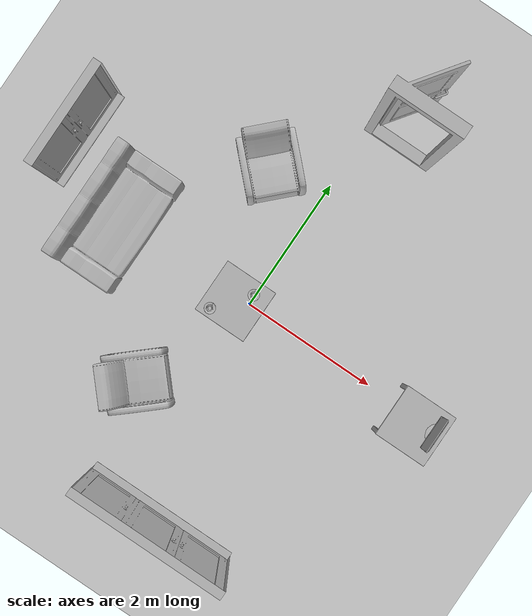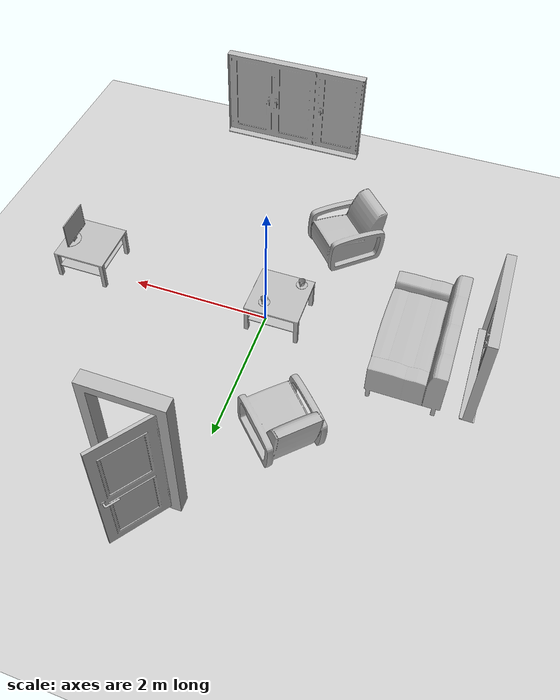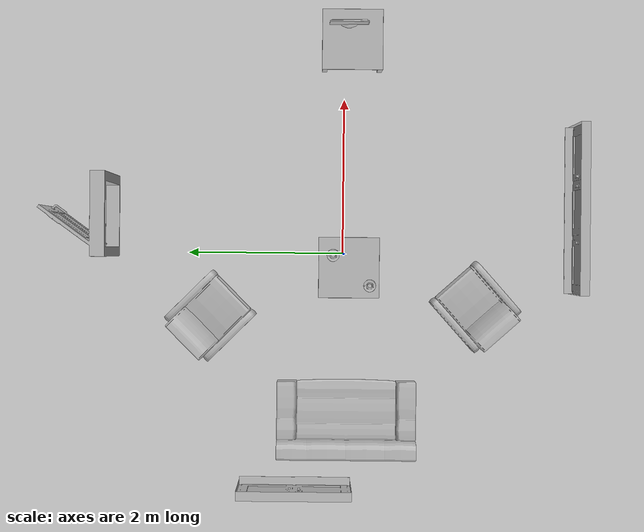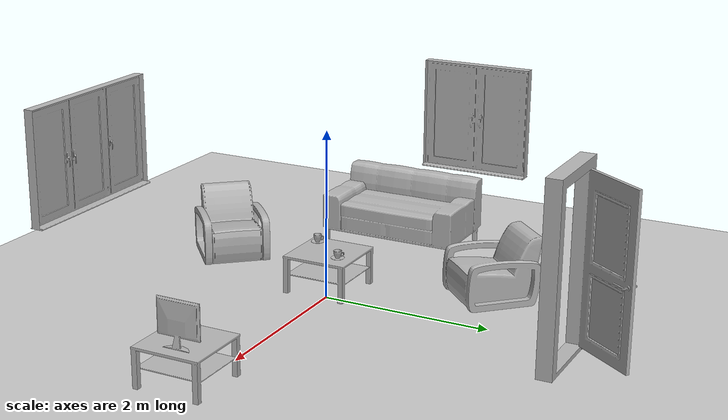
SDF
<sdf version="1.4">
 <world name="default">
  <light name="sun" type="directional">
   <pose>0 0 10 0 -0 0</pose>
   <diffuse>0.8 0.8 0.8 1</diffuse>
   <specular>0.2 0.2 0.2 1</specular>
   <attenuation>
    <range>1000</range>
    <constant>0.9</constant>
    <linear>0.01</linear>
    <quadratic>0.001</quadratic>
   </attenuation>
   <direction>-0.5 0.1 -0.9</direction>
  </light>
  <model name="ground_plane">
   <static>1</static>
   <link name="link">
    <collision name="collision">
     <geometry><plane><normal>0 0 1</normal><size>100 100</size></plane></geometry>
     <surface><friction><ode><mu>100</mu><mu2>50</mu2></ode></friction></surface>
    </collision>
    <visual name="visual">
     <cast_shadows>0</cast_shadows>
     <geometry><plane><normal>0 0 1</normal><size>100 100</size></plane></geometry>
     <material>
      <script><uri>file://media/materials/scripts/gazebo.material</uri><name>Gazebo/Grey</name></script>
     </material>
    </visual>
    <velocity_decay><linear>0</linear><angular>0</angular></velocity_decay>
   </link>
  </model>
  <physics type="ode">
   <max_step_size>0.001</max_step_size>
   <real_time_factor>1</real_time_factor>
   <real_time_update_rate>1000</real_time_update_rate>
   <gravity>0 0 -9.8</gravity>
  </physics>
  <scene><ambient>0.4 0.4 0.4 1</ambient><background>0.7 0.7 0.7 1</background><shadows>1</shadows></scene>
  <spherical_coordinates>
   <surface_model>EARTH_WGS84</surface_model>
   <latitude_deg>0</latitude_deg>
   <longitude_deg>0</longitude_deg>
   <elevation>0</elevation>
   <heading_deg>0</heading_deg>
  </spherical_coordinates>
  <model name="214_0">
   <pose>0.465316 3 0.02 0 0 -1.5708</pose>
   <static>1</static>
   <link name="link">
    <collision name="collision"><geometry><box><size>0.829998 1.03985 2</size></box></geometry></collision>
    <visual name="visual"><geometry><mesh><uri>model://214/214.dae</uri></mesh></geometry></visual>
    <velocity_decay><linear>0</linear><angular>0</angular></velocity_decay>
   </link>
  </model>
  <model name="209_0">
   <pose>-2.92345 0.599998 0.85 0 -0 0</pose>
   <static>1</static>
   <link name="link">
    <collision name="collision"><geometry><box><size>0.175 1.4 2</size></box></geometry></collision>
    <visual name="visual"><geometry><mesh><uri>model://209/209.dae</uri></mesh></geometry></visual>
    <velocity_decay><linear>0</linear><angular>0</angular></velocity_decay>
   </link>
  </model>
  <model name="210_0">
   <pose>0.572728 -2.88268 0.85 0 -0 1.5708</pose>
   <static>1</static>
   <link name="link">
    <collision name="collision"><geometry><box><size>0.175 2.1 2</size></box></geometry></collision>
    <visual name="visual"><geometry><mesh><uri>model://210/210.dae</uri></mesh></geometry></visual>
    <velocity_decay><linear>0</linear><angular>0</angular></velocity_decay>
   </link>
  </model>
  <model name="349_0">
   <pose>-0.684899 -1.71606 0.05 0 -0 0.727855</pose>
   <static>1</static>
   <link name="link">
    <collision name="collision"><geometry><box><size>0.921432 0.8 2</size></box></geometry></collision>
    <visual name="visual"><geometry><mesh><uri>model://349/349.dae</uri></mesh></geometry></visual>
    <velocity_decay><linear>0</linear><angular>0</angular></velocity_decay>
   </link>
  </model>
  <model name="349_1">
   <pose>-0.825122 1.71716 0.05 0 0 -0.786125</pose>
   <static>1</static>
   <link name="link">
    <collision name="collision"><geometry><box><size>0.921432 0.8 2</size></box></geometry></collision>
    <visual name="visual"><geometry><mesh><uri>model://349/349.dae</uri></mesh></geometry></visual>
    <velocity_decay><linear>0</linear><angular>0</angular></velocity_decay>
   </link>
  </model>
  <model name="64_0">
   <pose>-2.11326 -0.050375 0.05 0 -0 0</pose>
   <static>1</static>
   <link name="link">
    <collision name="collision"><geometry><box><size>1.01 1.78046 2</size></box></geometry></collision>
    <visual name="visual"><geometry><mesh><uri>model://64/64.dae</uri></mesh></geometry></visual>
    <velocity_decay><linear>0</linear><angular>0</angular></velocity_decay>
   </link>
  </model>
  <model name="71_0">
   <pose>-0.177271 -0.072003 0.05 0 -0 0</pose>
   <static>1</static>
   <link name="link">
    <collision name="collision"><geometry><box><size>0.78 0.78 2</size></box></geometry></collision>
    <visual name="visual"><geometry><mesh><uri>model://71/71.dae</uri></mesh></geometry></visual>
    <velocity_decay><linear>0</linear><angular>0</angular></velocity_decay>
   </link>
  </model>
  <model name="149_0">
   <pose>-0.408026 -0.339829 0.5 0 -0 0</pose>
   <static>1</static>
   <link name="link">
    <collision name="collision"><geometry><box><size>0.160344 0.162279 0</size></box></geometry></collision>
    <visual name="visual"><geometry><mesh><uri>model://149/149.dae</uri></mesh></geometry></visual>
    <velocity_decay><linear>0</linear><angular>0</angular></velocity_decay>
   </link>
  </model>
  <model name="149_1">
   <pose>-0.02127 0.131999 0.5 0 -0 0</pose>
   <static>1</static>
   <link name="link">
    <collision name="collision"><geometry><box><size>0.160344 0.162279 0</size></box></geometry></collision>
    <visual name="visual"><geometry><mesh><uri>model://149/149.dae</uri></mesh></geometry></visual>
    <velocity_decay><linear>0</linear><angular>0</angular></velocity_decay>
   </link>
  </model>
  <model name="110_0">
   <pose>2.94273 -0.047998 0.496775 0 0 -3.14159</pose>
   <static>1</static>
   <link name="link">
    <collision name="collision"><geometry><box><size>0.099517 0.5 2</size></box></geometry></collision>
    <visual name="visual"><geometry><mesh><uri>model://110/110.dae</uri></mesh></geometry></visual>
    <velocity_decay><linear>0</linear><angular>0</angular></velocity_decay>
   </link>
  </model>
  <model name="71_1">
   <pose>2.75073 -0.095999 0.05 0 -0 0</pose>
   <static>1</static>
   <link name="link">
    <collision name="collision"><geometry><box><size>0.78 0.78 2</size></box></geometry></collision>
    <visual name="visual"><geometry><mesh><uri>model://71/71.dae</uri></mesh></geometry></visual>
    <velocity_decay><linear>0</linear><angular>0</angular></velocity_decay>
   </link>
  </model>
 </world>
</sdf>
